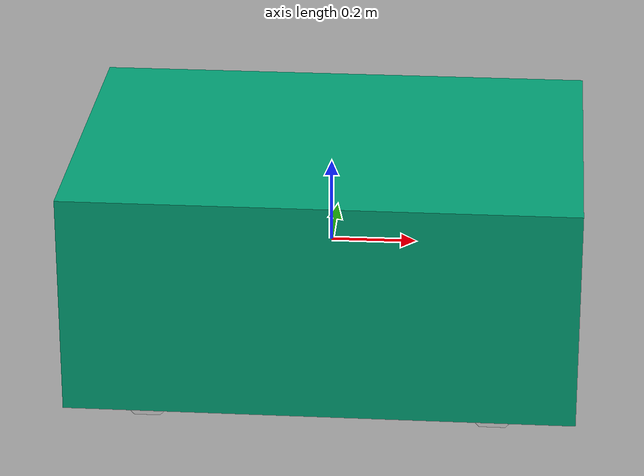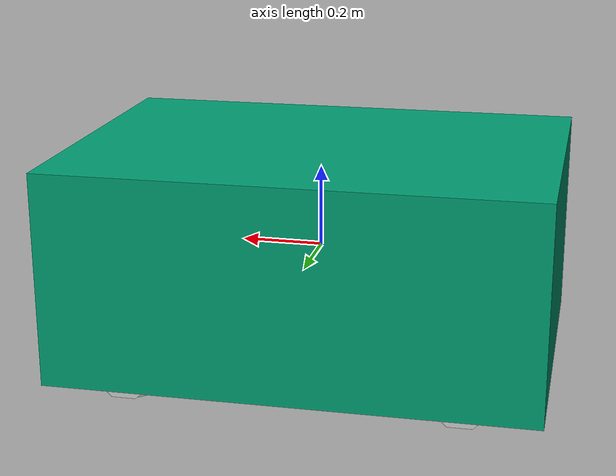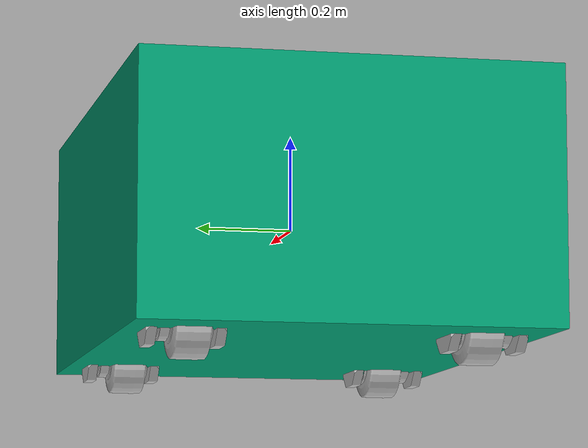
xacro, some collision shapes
<?xml version="1.0"?>
<robot name="musashi_robot" xmlns:xacro="http://ros.org/wiki/xacro">
  <xacro:arg name="gpu" default="false"/>
  <xacro:property name="gpu" value="$(arg gpu)" />

  <!-- Import all robot parts which were xacroed -->
  <xacro:include filename="$(find robot_sim_exp)/urdf/musashi_robot.xacro" />
  <!-- Import Rviz colors -->
  <xacro:include filename="$(find robot_sim_exp)/urdf/colors.xacro" />
  <!-- Import robot properties -->
  <xacro:include filename="$(find robot_sim_exp)/urdf/properties.xacro" />
  <!-- Import sensor and actuator properties -->
  <xacro:include filename="$(find robot_sim_exp)/urdf/sensors_and_actuators.xacro" />

  <link name="base_link">
    <visual>
      <geometry>
        <box size="0.01 0.01 0.01"/>
      </geometry>
      <material name="Red"/>
    </visual>
  </link>
  <gazebo reference="base_link">
    <material>Gazebo/Red</material>
  </gazebo>

<link name="rear_axis_center">
 <visual>
   <geometry>
     <box size="0.01 0.01 0.01"/>
   </geometry>
   <material name="Red"/>
 </visual>
</link>
<gazebo reference="rear_axis_center">
 <material>Gazebo/Red</material>
</gazebo>
<joint name="base_link_to_rear_axis_center" type="fixed">
  <parent link="base_link" />
  <child link="rear_axis_center" />
  <origin xyz="-0.40 0.0 0.0" />
</joint>

  <link name="robot_frame">
    <visual>
      <geometry>
        <mesh filename="package://robot_sim_exp/urdf/meshes/Collada/robot_chassis_body.dae" />
      </geometry>
      <origin rpy="0 0 0" xyz="0 0 0" />
    </visual>
    <collision>
      <geometry>
        <box size="1.180 0.840 ${robot_height}"/>
      </geometry>
      <origin rpy="0 0 0" xyz="0 0 0"/>
    </collision>
    <xacro:inertial_box mass="${robot_mass}" x="${robot_length}" y="${robot_width}" z="${robot_height}" />
  </link>
  <joint name="base_link_to_robot_frame" type="fixed">
    <parent link="base_link" />
    <child link="robot_frame" />
    <origin xyz="0.0 0.0 0.0" />
  </joint>

<!-- ///////////////////////////////////////// STEERING //////////////////////////////////// -->

  <xacro:steering name="back_left_wheel_shaft" parent="base_link" mass="${mass_steering_unit}"
    sizex="${x_steering_unit}" sizey="${y_steering_unit}" sizez="${z_steering_unit}" ox="-0.40" oy="0.29" oz="0.0"
    filename="package://robot_sim_exp/urdf/meshes/Collada/back_left_wheel_shaft.dae" />

  <xacro:steering name="back_right_wheel_shaft" parent="base_link" mass="${mass_steering_unit}"
    sizex="${x_steering_unit}" sizey="${y_steering_unit}" sizez="${z_steering_unit}" ox="-0.40" oy="-0.29" oz="0.0"
    filename="package://robot_sim_exp/urdf/meshes/Collada/back_right_wheel_shaft.dae" />

  <xacro:steering name="front_left_wheel_shaft" parent="base_link" mass="${mass_steering_unit}"
    sizex="${x_steering_unit}" sizey="${y_steering_unit}" sizez="${z_steering_unit}" ox="0.40" oy="0.29" oz="0.0"
    filename="package://robot_sim_exp/urdf/meshes/Collada/front_left_wheel_shaft.dae" />

  <xacro:steering name="front_right_wheel_shaft" parent="base_link" mass="${mass_steering_unit}"
    sizex="${x_steering_unit}" sizey="${y_steering_unit}" sizez="${z_steering_unit}" ox="0.40" oy="-0.29" oz="0.0"
    filename="package://robot_sim_exp/urdf/meshes/Collada/front_right_wheel_shaft.dae" />

<!-- ///////////////////////////////////////// WHEELS //////////////////////////////////// -->

  <xacro:wheels name="back_left_wheel" parent="back_left_wheel_shaft" mass="${mass_wheel}"
    length="${thickness}" radius="${radius}" ox="-0.40" oy="0.29" oz="-0.2265" mu1="200" mu2="100" kp="10000000" kd="40"
    filename="package://robot_sim_exp/urdf/meshes/Collada/back_left_wheel.dae" />

  <xacro:wheels name="back_right_wheel" parent="back_right_wheel_shaft" mass="${mass_wheel}"
    length="${thickness}" radius="${radius}" ox="-0.40" oy="-0.29" oz="-0.2265" mu1="200" mu2="100" kp="10000000" kd="40"
    filename="package://robot_sim_exp/urdf/meshes/Collada/back_right_wheel.dae" />

  <xacro:wheels name="front_left_wheel" parent="front_left_wheel_shaft" mass="${mass_wheel}"
    length="${thickness}" radius="${radius}" ox="0.40" oy="0.29" oz="-0.2265" mu1="200" mu2="100" kp="10000000" kd="40"
    filename="package://robot_sim_exp/urdf/meshes/Collada/front_left_wheel.dae" />

  <xacro:wheels name="front_right_wheel" parent="front_right_wheel_shaft" mass="${mass_wheel}"
    length="${thickness}" radius="${radius}" ox="0.40" oy="-0.29" oz="-0.2265" mu1="200" mu2="100" kp="10000000" kd="40"
    filename="package://robot_sim_exp/urdf/meshes/Collada/front_right_wheel.dae" />

<!-- ///////////////////////////////////////// IMU //////////////////////////////////// -->
  <xacro:imu_sensor parent="base_link" imu_name="imu_sensor" mass="${imu_mass}" sizex="0.043" sizey="0.09" sizez="0.005" ox="0.099" oy="0.0" oz="0.0" update_rate="${imu_update_rate}" update_rateHz="${imu_update_rateHz}" noise="${imu_noise}" />

  <gazebo>
    <plugin name="gazebo_ros_control" filename="libgazebo_ros_control.so">
      <robotNamespace>/musashi_robot</robotNamespace>
      <robotSimType>gazebo_ros_control/DefaultRobotHWSim</robotSimType>
      <legacyModeNS>false</legacyModeNS>
    </plugin>
  </gazebo>

</robot>

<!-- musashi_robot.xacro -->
<robot name="musashi_robot" xmlns:xacro="http://ros.org/wiki/xacro">

  <!-- ////////////////////////////INERTIA DEFINITIONS//////////////////////////// -->
  <!-- based on the inertia list from wikipedia -->

  <xacro:macro name="inertial_zylinder_x" params="mass radius height">
    <inertial>
      <mass value="${mass}" />
      <inertia ixx="${(mass/2)*radius*radius}" ixy="0.0" ixz="0.0" iyy="${(mass/12)*(3*radius*radius+height*height)}" iyz="0.0" izz="${(mass/12)*(3*radius*radius+height*height)}" />
    </inertial>
  </xacro:macro>

  <xacro:macro name="inertial_zylinder_y" params="mass radius height">
    <inertial>
      <mass value="${mass}" />
      <inertia ixx="${(mass/12)*(3*radius*radius+height*height)}" ixy="0.0" ixz="0.0" iyy="${(mass/2)*radius*radius}" iyz="0.0" izz="${(mass/12)*(3*radius*radius+height*height)}" />
    </inertial>
  </xacro:macro>

  <xacro:macro name="inertial_zylinder_z" params="mass radius height">
    <inertial>
      <mass value="${mass}" />
      <inertia ixx="${(mass/12)*(3*radius*radius+height*height)}" ixy="0.0" ixz="0.0" iyy="${(mass/12)*(3*radius*radius+height*height)}" iyz="0.0" izz="${(mass/2)*radius*radius}" />
    </inertial>
  </xacro:macro>

  <xacro:macro name="inertial_box" params="mass x y z">
    <inertial>
      <mass value="${mass}" />
      <inertia ixx="${(mass/12)*(y*y+z*z)}" ixy="0.0" ixz="0.0" iyy="${(mass/12)*(x*x+z*z)}" iyz="0.0" izz="${(mass/12)*(y*y+x*x)}" />
    </inertial>
  </xacro:macro>

  <!-- //////////////////////////// Robot xacros //////////////////////////// -->

  <xacro:macro name="default_box" params="parent child_name mass sizex sizey sizez ox oy oz roll pitch yaw color">
    <link name="${child_name}" >
      <visual>
        <geometry>
          <box size="${sizex} ${sizey} ${sizez}" />
        </geometry>
        <origin rpy="${roll} ${pitch} ${yaw}" />
        <material name="${color}" />
      </visual>
      <xacro:inertial_box mass="${mass}" x="${sizex}" y="${sizey}" z="${sizez}" />
    </link>
    <gazebo reference="${child_name}" >
      <material>Gazebo/${color}</material>
    </gazebo>
    <joint name="${parent}_to_${child_name}" type="fixed">
      <parent link="${parent}" />
      <child link="${child_name}" />
      <origin xyz="${ox} ${oy} ${oz}" />
    </joint>
  </xacro:macro>

  <xacro:macro name="default_zylinder_in_X" params="parent child_name mass length radius ox oy oz roll pitch yaw color">
    <link name="${child_name}" >
      <visual>
        <geometry>
          <cylinder length="${length}" radius="${radius}" />
        </geometry>
        <origin rpy="${roll} ${pitch} ${yaw}" />
        <material name="${color}" />
      </visual>
      <xacro:inertial_zylinder_x mass="${mass}" radius="${radius}" height="${length}" />
    </link>
    <gazebo reference="${child_name}" >
      <material>Gazebo/${color}</material>
    </gazebo>
    <joint name="${parent}_to_${child_name}" type="fixed">
      <parent link="${parent}" />
      <child link="${child_name}" />
      <origin xyz="${ox} ${oy} ${oz}" />
    </joint>
  </xacro:macro>

  <xacro:macro name="default_zylinder_in_Y" params="parent child_name mass length radius ox oy oz roll pitch yaw color">
    <link name="${child_name}" >
      <visual>
        <geometry>
          <cylinder length="${length}" radius="${radius}" />
        </geometry>
        <origin rpy="${roll} ${pitch} ${yaw}" />
        <material name="${color}" />
      </visual>
      <xacro:inertial_zylinder_y mass="${mass}" radius="${radius}" height="${length}" />
    </link>
    <gazebo reference="${child_name}" >
      <material>Gazebo/${color}</material>
    </gazebo>
    <joint name="${parent}_to_${child_name}" type="fixed">
      <parent link="${parent}" />
      <child link="${child_name}" />
      <origin xyz="${ox} ${oy} ${oz}" />
    </joint>
  </xacro:macro>

  <xacro:macro name="default_zylinder_in_Z" params="parent child_name mass length radius ox oy oz roll pitch yaw color">
    <link name="${child_name}" >
      <visual>
        <geometry>
          <cylinder length="${length}" radius="${radius}" />
        </geometry>
        <origin rpy="${roll} ${pitch} ${yaw}" />
        <material name="${color}" />
      </visual>
      <xacro:inertial_zylinder_z mass="${mass}" radius="${radius}" height="${length}" />
    </link>
    <gazebo reference="${child_name}" >
      <material>Gazebo/${color}</material>
    </gazebo>
    <joint name="${parent}_to_${child_name}" type="fixed">
      <parent link="${parent}" />
      <child link="${child_name}" />
      <origin xyz="${ox} ${oy} ${oz}" />
    </joint>
  </xacro:macro>

  <!-- //////////////////////////// Robot xacros with collision //////////////////////////// -->

  <xacro:macro name="default_box_with_collision" params="parent child_name mass sizex sizey sizez ox oy oz roll pitch yaw color">
    <link name="${child_name}" >
      <visual>
        <geometry>
          <box size="${sizex} ${sizey} ${sizez}" />
        </geometry>
        <origin rpy="${roll} ${pitch} ${yaw}" />
        <material name="${color}" />
      </visual>
      <collision>
        <geometry>
          <box size="${sizex} ${sizey} ${sizez}" />
        </geometry>
        <origin rpy="${roll} ${pitch} ${yaw}" />
      </collision>
      <xacro:inertial_box mass="${mass}" x="${sizex}" y="${sizey}" z="${sizez}" />
    </link>
    <gazebo reference="${child_name}" >
      <material>Gazebo/${color}</material>
    </gazebo>
    <joint name="${parent}_to_${child_name}" type="fixed">
      <parent link="${parent}" />
      <child link="${child_name}" />
      <origin xyz="${ox} ${oy} ${oz}" />
    </joint>
  </xacro:macro>

  <xacro:macro name="default_zylinder_in_X_with_collision" params="parent child_name mass length radius ox oy oz roll pitch yaw color">
    <link name="${child_name}" >
      <visual>
        <geometry>
          <cylinder length="${length}" radius="${radius}" />
        </geometry>
        <origin rpy="${roll} ${pitch} ${yaw}" />
        <material name="${color}" />
      </visual>
      <collision>
        <geometry>
          <cylinder length="${length}" radius="${radius}" />
        </geometry>
        <origin rpy="${roll} ${pitch} ${yaw}" />
      </collision>
      <xacro:inertial_zylinder_x mass="${mass}" radius="${radius}" height="${length}" />
    </link>
    <gazebo reference="${child_name}" >
      <material>Gazebo/${color}</material>
    </gazebo>
    <joint name="${parent}_to_${child_name}" type="fixed">
      <parent link="${parent}" />
      <child link="${child_name}" />
      <origin xyz="${ox} ${oy} ${oz}" />
    </joint>
  </xacro:macro>

  <xacro:macro name="default_zylinder_in_Y_with_collision" params="parent child_name mass length radius ox oy oz roll pitch yaw color">
    <link name="${child_name}" >
      <visual>
        <geometry>
          <cylinder length="${length}" radius="${radius}" />
        </geometry>
        <origin rpy="${roll} ${pitch} ${yaw}" />
        <material name="${color}" />
      </visual>
      <collision>
        <geometry>
          <cylinder length="${length}" radius="${radius}" />
        </geometry>
        <origin rpy="${roll} ${pitch} ${yaw}" />
      </collision>
      <xacro:inertial_zylinder_y mass="${mass}" radius="${radius}" height="${length}" />
    </link>
    <gazebo reference="${child_name}" >
      <material>Gazebo/${color}</material>
    </gazebo>
    <joint name="${parent}_to_${child_name}" type="fixed">
      <parent link="${parent}" />
      <child link="${child_name}" />
      <origin xyz="${ox} ${oy} ${oz}" />
    </joint>
  </xacro:macro>

  <xacro:macro name="default_zylinder_in_Z_with_collision" params="parent child_name mass length radius ox oy oz roll pitch yaw color">
    <link name="${child_name}" >
      <visual>
        <geometry>
          <cylinder length="${length}" radius="${radius}" />
        </geometry>
        <origin rpy="${roll} ${pitch} ${yaw}" />
        <material name="${color}" />
      </visual>
      <collision>
        <geometry>
          <cylinder length="${length}" radius="${radius}" />
        </geometry>
        <origin rpy="${roll} ${pitch} ${yaw}" />
      </collision>
      <xacro:inertial_zylinder_z mass="${mass}" radius="${radius}" height="${length}" />
    </link>
    <gazebo reference="${child_name}" >
      <material>Gazebo/${color}</material>
    </gazebo>
    <joint name="${parent}_to_${child_name}" type="fixed">
      <parent link="${parent}" />
      <child link="${child_name}" />
      <origin xyz="${ox} ${oy} ${oz}" />
    </joint>
  </xacro:macro>

</robot>

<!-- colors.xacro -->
<robot name="musashi_robot" xmlns:xacro="http://ros.org/wiki/xacro">

  <material name="Black">
    <color rgba="0.0 0.0 0.0 1.0"/>
  </material>

  <material name="Blue">
    <color rgba="0.0 0.0 0.8 1.0"/>
  </material>

  <material name="Green">
    <color rgba="0.0 0.8 0.0 1.0"/>
  </material>

  <material name="Yellow">
    <color rgba="1 1 0 1"/>
  </material>

  <material name="Grey">
    <color rgba="0.2 0.2 0.2 1.0"/>
  </material>

  <material name="WhiteGlow">
	<color rgba="0.75 0.75 0.75 1"/>
  </material>

  <material name="Darkgrey">
	<color rgba="0.41 0.41 0.41 1"/>
  </material>

  <material name="Orange">
    <color rgba="${255/255} ${108/255} ${10/255} 1.0"/>
  </material>

  <material name="Brown">
    <color rgba="${222/255} ${207/255} ${195/255} 1.0"/>
  </material>

  <material name="Red">
    <color rgba="0.8 0.0 0.0 1.0"/>
  </material>

  <material name="White">
    <color rgba="1.0 1.0 1.0 1.0"/>
  </material>

</robot>

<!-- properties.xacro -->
<robot name="musashi_robot" xmlns:xacro="http://ros.org/wiki/xacro">

  <xacro:property name="pi" value="3.14159" />

  <!-- /////////////////// Robot Main /////////////////// -->
  <xacro:property name="robot_length" value="1.300" />
  <xacro:property name="robot_width" value="0.960" />
  <xacro:property name="robot_height" value="0.520" />
  <xacro:property name="robot_mass" value="194.92" />

  <!-- /////////////////// Steering Unit /////////////////// -->
  <xacro:property name="x_steering_unit" value="0.130" /> <!-- approx. value -->
  <xacro:property name="y_steering_unit" value="0.157" /> <!-- approx. value -->
  <xacro:property name="z_steering_unit" value="0.320" /> <!-- approx. value -->
  <xacro:property name="mass_steering_unit" value="24.8" />

  <!-- /////////////////// Wheels /////////////////// -->
  <xacro:property name="thickness" value="0.075" />
  <xacro:property name="radius" value="0.090" />
  <xacro:property name="mass_wheel" value="4.82" />

  <!-- /////////////////// IMU /////////////////// -->
  <xacro:property name="imu_update_rate" value="25.0" />			<!-- update rate in ms -->
  <xacro:property name="imu_update_rateHz" value="40.0" />
  <xacro:property name="imu_mass" value="0.05" />
  <xacro:property name="imu_noise" value="0.001" />

</robot>

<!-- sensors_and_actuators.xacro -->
<robot name="musashi_robot" xmlns:xacro="http://ros.org/wiki/xacro">

<!-- ///////////////////////////////////////// STEERING //////////////////////////////////// -->

<!-- CONTINOUS -->
  <xacro:macro name="steering" params="name parent mass sizex sizey sizez ox oy oz filename">
    <link name="${name}">
      <visual>
        <geometry>
	  <mesh filename="${filename}"/>
	</geometry>
	<origin rpy="0 0 0" xyz="${-ox} ${-oy} ${-oz}" />
      </visual>
      <xacro:inertial_box mass="${mass}" x="${sizex}" y="${sizey}" z="${sizez}" />
    </link>
    <joint name="${parent}_to_${name}" type="continuous">
      <parent link="${parent}"/>
      <child link="${name}"/>
      <origin xyz="${ox} ${oy} ${oz}" />
      <axis xyz="0 0 1" />
    </joint>
    <transmission name="${name}_trans">
      <type>transmission_interface/SimpleTransmission</type>
      <actuator name="${name}_motor">
        <mechanicalReduction>1</mechanicalReduction>
	<hardwareInterface>hardware_interface/EffortJointInterface</hardwareInterface>
      </actuator>
      <joint name="${parent}_to_${name}" type="continuous">
        <hardwareInterface>hardware_interface/EffortJointInterface</hardwareInterface>
      </joint>
    </transmission>
  </xacro:macro>

<!-- FIXED -->
  <xacro:macro name="steering_fixed" params="name parent mass sizex sizey sizez ox oy oz filename">
    <link name="${name}">
      <visual>
        <geometry>
	  <mesh filename="${filename}"/>
	</geometry>
	<origin rpy="0 0 0" xyz="${-ox} ${-oy} ${-oz}" />
      </visual>
      <xacro:inertial_box mass="${mass}" x="${sizex}" y="${sizey}" z="${sizez}" />
    </link>
    <joint name="${parent}_to_${name}" type="fixed">
      <parent link="${parent}"/>
      <child link="${name}"/>
      <origin xyz="${ox} ${oy} ${oz}" />
      <axis xyz="0 0 1" />
    </joint>
  </xacro:macro>

<!-- ///////////////////////////////////////// WHEELS //////////////////////////////////// -->

  <xacro:macro name="wheels" params="name parent mass length radius ox oy oz mu1 mu2 kp kd filename" >
    <link name="${name}" >
      <visual>
        <geometry>
	  <mesh filename="${filename}"/>
	</geometry>
	<origin rpy="0 0 0" xyz="${-ox} ${-oy} ${-oz}" />
      </visual>
      <collision>
        <geometry>
	  <mesh filename="${filename}"/>
	</geometry>
	<origin rpy="0 0 0" xyz="${-ox} ${-oy} ${-oz}" />
      </collision>
      <xacro:inertial_zylinder_y mass="${mass}" radius="${radius}" height="${length}" />
    </link>
    <gazebo reference="${name}" >
      <mu1 value="${mu1}"/>
      <mu2 value="${mu2}"/>
      <kp value="${kp}" />
      <kd value="${kd}" />
    </gazebo>
    <joint name="${parent}_to_${name}" type="continuous">
      <parent link="${parent}" />
      <child link="${name}" />
      <axis xyz="0 1 0" />
      <origin xyz="0.0 0.0 ${oz}" />
    </joint>
    <transmission name="${name}_trans">
      <type>transmission_interface/SimpleTransmission</type>
      <actuator name="${name}_motor">
        <mechanicalReduction>1</mechanicalReduction>
      </actuator>
      <joint name="${parent}_to_${name}">
        <hardwareInterface>hardware_interface/VelocityJointInterface</hardwareInterface>
      </joint>
    </transmission>
  </xacro:macro>

<!-- ////////////////////////////// Lidar ////////////////////////////// -->

  <xacro:macro name="lidar_sensor" params="parent lidar_name length radius mass ox oy oz update_rate min_angle max_angle min_range max_range range_resolution stdv" >
    <link name="${lidar_name}">
	  <visual>
	    <geometry>
		  <cylinder length="${length}" radius="${radius}"/>
		</geometry>
		<origin rpy="0 0 0" xyz="0 0 0"/>
		<material name="Black"/>
	  </visual>
	  <xacro:inertial_zylinder_z mass="${mass}" radius="${radius}" height="${length}" />
	</link>
	<gazebo reference="${lidar_name}">
      <material>Gazebo/Black</material>
  	</gazebo>
	<joint name="$[parent}_to_${lidar_name}" type="fixed">
	  <parent link="${parent}"/>
      <child link="${lidar_name}"/>
	  <origin xyz="${ox} ${oy} ${oz}"/>
	</joint>

	<!-- RPLidar -->
  	<gazebo reference="${lidar_name}">
      <sensor type="ray" name="head_hokuyo_sensor">
        <pose>0 0 0 0 0 0</pose>
	<visualize>false</visualize>
      	<update_rate>${update_rate}</update_rate>
      	<ray>
          <scan>
            <horizontal>
	      <samples>400</samples>
              <resolution>1</resolution>
              <min_angle>${min_angle}</min_angle>
              <max_angle>${max_angle}</max_angle>
          	</horizontal>
          </scan>
          <range>
            <min>${min_range}</min>
            <max>${max_range}</max>
          	<resolution>${range_resolution}</resolution>
          </range>
          <noise>
            <type>gaussian</type>
          	<mean>0.0</mean>
          	<stddev>${stdv}</stddev>
          </noise>
      	</ray>
      	<plugin name="gazebo_ros_head_hokuyo_controller" filename="libgazebo_ros_laser.so">
          <topicName>/lidar/scan</topicName>
          <frameName>lidar</frameName>
      	</plugin>
      </sensor>
    </gazebo>
  </xacro:macro>

<!-- ////////////////////////////// IMU ////////////////////////////// -->

  <xacro:macro name="imu_sensor" params="parent imu_name mass sizex sizey sizez ox oy oz update_rate update_rateHz noise" >
    <link name="${imu_name}">
	  <visual>
	    <geometry>
	      <box size="${sizex} ${sizey} ${sizez}"/>
		</geometry>
	    <material name="White"/>
	  </visual>
	  <xacro:inertial_box mass="${mass}" x="${sizex}" y="${sizey}" z="${sizez}" />
    </link>
	<joint name="${parent}_to_${imu_name}" type="fixed">
	  <parent link="${parent}"/>
	  <child link="${imu_name}"/>
	  <origin xyz="${ox} ${oy} ${oz}"/>
	</joint>
        <!-- maybe switch to the Hector version of the IMU -->
    <gazebo reference="${imu_name}">
      <material>Gazebo/White</material>
	  <gravity>true</gravity>
	  <sensor name="${imu_name}_sensor" type="imu">
	    <always_on>true</always_on>
	    <update_rate>${update_rate}</update_rate>
	    <visualize>true</visualize>
	    <topic>__default_topic__</topic>
  		<plugin filename="libgazebo_ros_imu_sensor.so" name="imu_plugin">
		  <topicName>imu/data_raw</topicName>
                  <bodyName>${imu_name}</bodyName>
		  <updateRateHZ>${update_rateHz}</updateRateHZ>
                  <gaussianNoise>${noise}</gaussianNoise>
		  <xyzOffset>0 0 0</xyzOffset>
		  <rpyOffset>0 0 0</rpyOffset>
                  <frameName>${imu_name}</frameName>
	    </plugin>
	    <pose>0 0 0 0 0 0</pose>
	  </sensor>
    </gazebo>
  </xacro:macro>

</robot>
